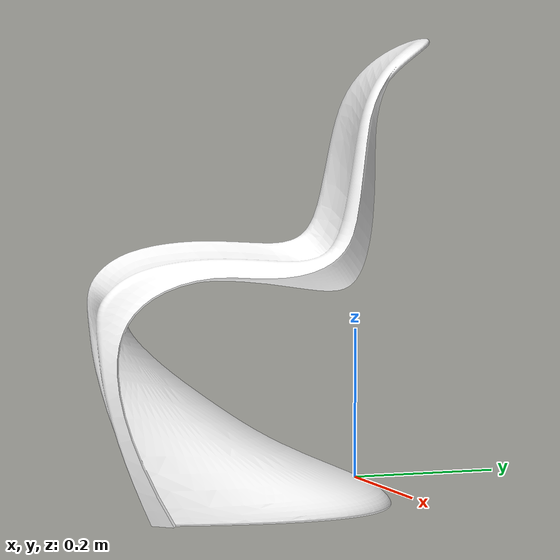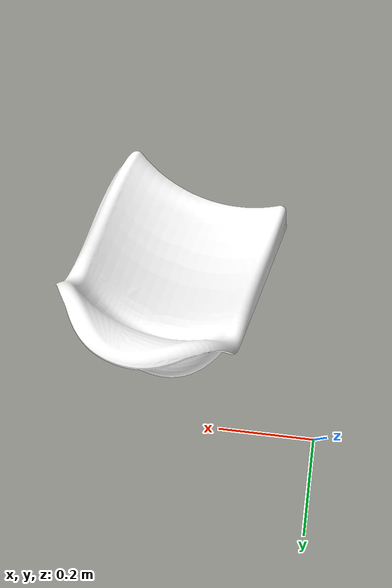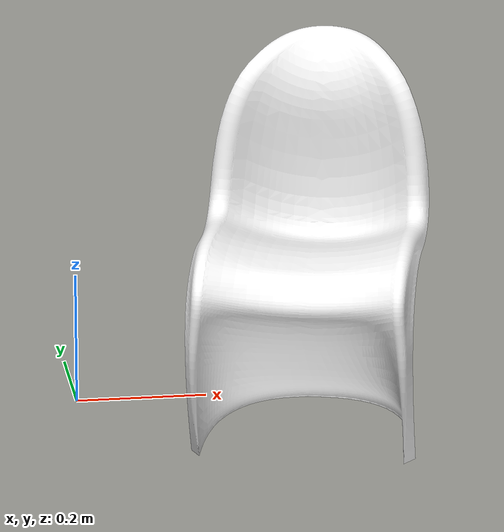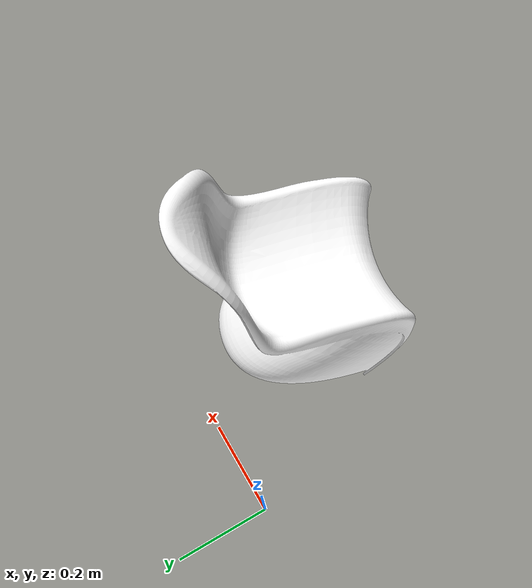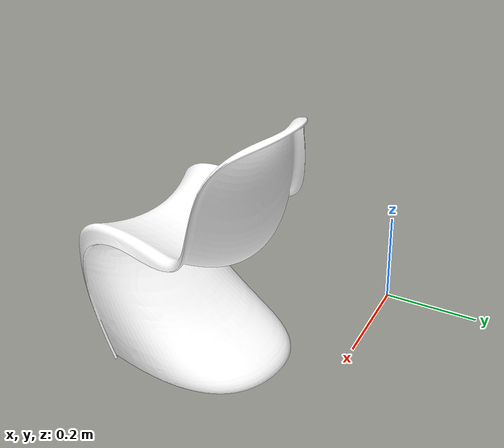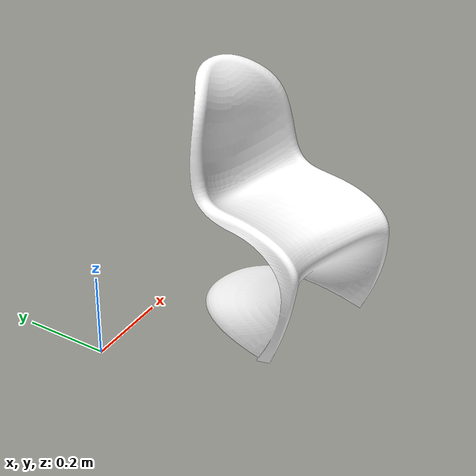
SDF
<?xml version="1.0" ?>
<sdf version="1.6">

  <!-- Model -->
  <model name="silladesk">
    <pose>0 0 0 0 0 0</pose>
    <static>true</static>

    <!-- Link -->
    <link name="link">
      <visual name="visual">
        <geometry>
          <mesh>
            <scale>1 1 1</scale>
            <uri>model://silladesk/meshes/silladesk.dae</uri>
          </mesh>
        </geometry>
        <material>
          <script>
            <uri>model://silladesk/materials/textures</uri>
            <uri>model://silladesk/materials/scripts</uri>
            <name>SilladeskTexture</name>
          </script>
          <ambient>1 1 1 1</ambient>
          <diffuse>1 1 1 1</diffuse>
          <specular>1 1 1 1</specular>
          <emissive>0 0 0 1</emissive>
        </material>
      </visual>

    </link>

  </model>
</sdf>
